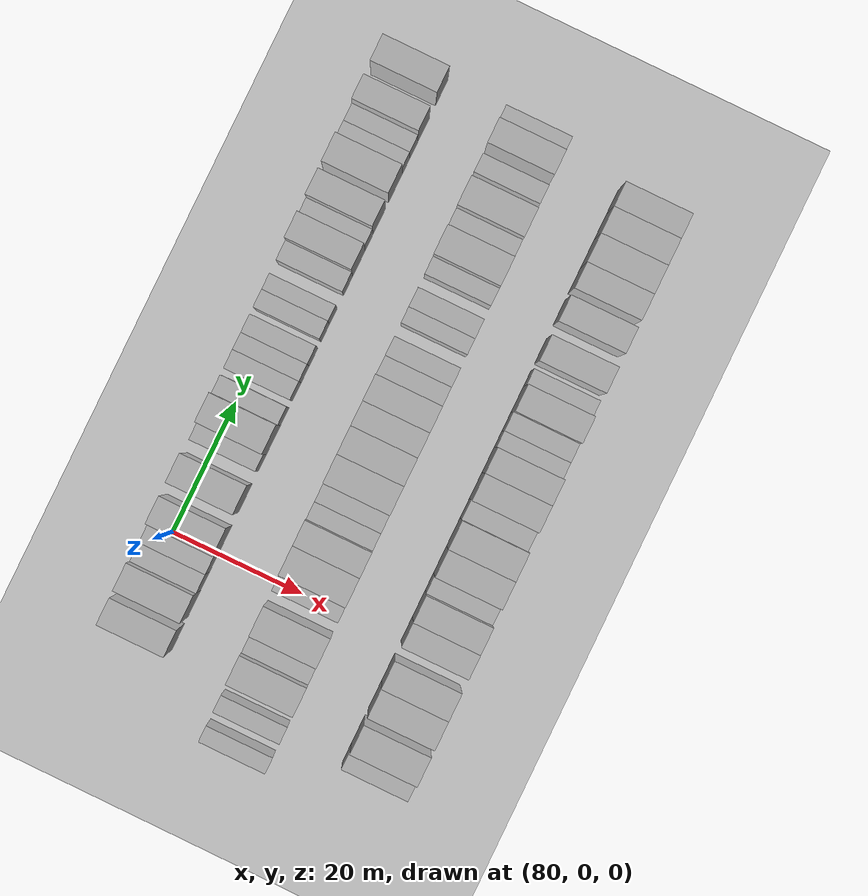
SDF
<sdf version="1.6">
 <world name="default">
  <include>
   <name>ground_plane_2</name>
   <uri>model://HANNAS_ground_plane</uri>
   <pose>100 0 0  0 0 0</pose>
  </include>
  <model name="building_609">
   <static>1</static>
   <pose>82.0000 -12.7474 0 0.000000 0.000000 0.000000</pose>
   <link name="link">
    <pose>0 0 4.50 0 0 0</pose>
    <collision name="collision"><geometry><box><size>10.0000 4.0182 9.0000</size></box></geometry></collision>
    <visual name="visual">
     <cast_shadows>0</cast_shadows>
     <geometry><box><size>10.0000 4.0182 9.0000</size></box></geometry>
     <material>
      <script>
       <uri>model://HANNAS_wall/materials/scripts</uri>
       <uri>model://HANNAS_wall/materials/textures</uri>
       <name>vrc/HANNAS_wall</name>
      </script>
     </material>
    </visual>
   </link>
  </model>
  <model name="building_610">
   <static>1</static>
   <pose>82.0000 -7.6578 0 0.000000 0.000000 0.000000</pose>
   <link name="link">
    <pose>0 0 4.50 0 0 0</pose>
    <collision name="collision"><geometry><box><size>10.0000 4.1610 9.0000</size></box></geometry></collision>
    <visual name="visual">
     <cast_shadows>0</cast_shadows>
     <geometry><box><size>10.0000 4.1610 9.0000</size></box></geometry>
     <material>
      <script>
       <uri>model://HANNAS_wall/materials/scripts</uri>
       <uri>model://HANNAS_wall/materials/textures</uri>
       <name>vrc/HANNAS_wall</name>
      </script>
     </material>
    </visual>
   </link>
  </model>
  <model name="building_611">
   <static>1</static>
   <pose>82.0000 -4.1638 0 0.000000 0.000000 0.000000</pose>
   <link name="link">
    <pose>0 0 3.00 0 0 0</pose>
    <collision name="collision"><geometry><box><size>10.0000 2.8270 6.0000</size></box></geometry></collision>
    <visual name="visual">
     <cast_shadows>0</cast_shadows>
     <geometry><box><size>10.0000 2.8270 6.0000</size></box></geometry>
     <material>
      <script>
       <uri>model://HANNAS_wall/materials/scripts</uri>
       <uri>model://HANNAS_wall/materials/textures</uri>
       <name>vrc/HANNAS_wall</name>
      </script>
     </material>
    </visual>
   </link>
  </model>
  <model name="building_612">
   <static>1</static>
   <pose>82.0000 -1.2792 0 0.000000 0.000000 0.000000</pose>
   <link name="link">
    <pose>0 0 3.00 0 0 0</pose>
    <collision name="collision"><geometry><box><size>10.0000 2.9424 6.0000</size></box></geometry></collision>
    <visual name="visual">
     <cast_shadows>0</cast_shadows>
     <geometry><box><size>10.0000 2.9424 6.0000</size></box></geometry>
     <material>
      <script>
       <uri>model://HANNAS_wall/materials/scripts</uri>
       <uri>model://HANNAS_wall/materials/textures</uri>
       <name>vrc/HANNAS_wall</name>
      </script>
     </material>
    </visual>
   </link>
  </model>
  <model name="building_613">
   <static>1</static>
   <pose>82.0000 2.2743 0 0.000000 0.000000 0.000000</pose>
   <link name="link">
    <pose>0 0 4.50 0 0 0</pose>
    <collision name="collision"><geometry><box><size>10.0000 4.1646 9.0000</size></box></geometry></collision>
    <visual name="visual">
     <cast_shadows>0</cast_shadows>
     <geometry><box><size>10.0000 4.1646 9.0000</size></box></geometry>
     <material>
      <script>
       <uri>model://HANNAS_wall/materials/scripts</uri>
       <uri>model://HANNAS_wall/materials/textures</uri>
       <name>vrc/HANNAS_wall</name>
      </script>
     </material>
    </visual>
   </link>
  </model>
  <model name="building_614">
   <static>1</static>
   <pose>82.0000 8.5472 0 0.000000 0.000000 0.000000</pose>
   <link name="link">
    <pose>0 0 4.50 0 0 0</pose>
    <collision name="collision"><geometry><box><size>10.0000 4.3812 9.0000</size></box></geometry></collision>
    <visual name="visual">
     <cast_shadows>0</cast_shadows>
     <geometry><box><size>10.0000 4.3812 9.0000</size></box></geometry>
     <material>
      <script>
       <uri>model://HANNAS_wall/materials/scripts</uri>
       <uri>model://HANNAS_wall/materials/textures</uri>
       <name>vrc/HANNAS_wall</name>
      </script>
     </material>
    </visual>
   </link>
  </model>
  <model name="building_615">
   <static>1</static>
   <pose>82.0000 14.0297 0 0.000000 0.000000 0.000000</pose>
   <link name="link">
    <pose>0 0 3.00 0 0 0</pose>
    <collision name="collision"><geometry><box><size>10.0000 2.5837 6.0000</size></box></geometry></collision>
    <visual name="visual">
     <cast_shadows>0</cast_shadows>
     <geometry><box><size>10.0000 2.5837 6.0000</size></box></geometry>
     <material>
      <script>
       <uri>model://HANNAS_wall/materials/scripts</uri>
       <uri>model://HANNAS_wall/materials/textures</uri>
       <name>vrc/HANNAS_wall</name>
      </script>
     </material>
    </visual>
   </link>
  </model>
  <model name="building_616">
   <static>1</static>
   <pose>82.0000 17.5222 0 0.000000 0.000000 0.000000</pose>
   <link name="link">
    <pose>0 0 4.50 0 0 0</pose>
    <collision name="collision"><geometry><box><size>10.0000 4.4014 9.0000</size></box></geometry></collision>
    <visual name="visual">
     <cast_shadows>0</cast_shadows>
     <geometry><box><size>10.0000 4.4014 9.0000</size></box></geometry>
     <material>
      <script>
       <uri>model://HANNAS_wall/materials/scripts</uri>
       <uri>model://HANNAS_wall/materials/textures</uri>
       <name>vrc/HANNAS_wall</name>
      </script>
     </material>
    </visual>
   </link>
  </model>
  <model name="building_617">
   <static>1</static>
   <pose>82.0000 21.1062 0 0.000000 0.000000 0.000000</pose>
   <link name="link">
    <pose>0 0 3.00 0 0 0</pose>
    <collision name="collision"><geometry><box><size>10.0000 2.7667 6.0000</size></box></geometry></collision>
    <visual name="visual">
     <cast_shadows>0</cast_shadows>
     <geometry><box><size>10.0000 2.7667 6.0000</size></box></geometry>
     <material>
      <script>
       <uri>model://HANNAS_wall/materials/scripts</uri>
       <uri>model://HANNAS_wall/materials/textures</uri>
       <name>vrc/HANNAS_wall</name>
      </script>
     </material>
    </visual>
   </link>
  </model>
  <model name="building_618">
   <static>1</static>
   <pose>82.0000 24.8997 0 0.000000 0.000000 0.000000</pose>
   <link name="link">
    <pose>0 0 3.00 0 0 0</pose>
    <collision name="collision"><geometry><box><size>10.0000 2.8203 6.0000</size></box></geometry></collision>
    <visual name="visual">
     <cast_shadows>0</cast_shadows>
     <geometry><box><size>10.0000 2.8203 6.0000</size></box></geometry>
     <material>
      <script>
       <uri>model://HANNAS_wall/materials/scripts</uri>
       <uri>model://HANNAS_wall/materials/textures</uri>
       <name>vrc/HANNAS_wall</name>
      </script>
     </material>
    </visual>
   </link>
  </model>
  <model name="building_619">
   <static>1</static>
   <pose>82.0000 27.5979 0 0.000000 0.000000 0.000000</pose>
   <link name="link">
    <pose>0 0 3.00 0 0 0</pose>
    <collision name="collision"><geometry><box><size>10.0000 2.5760 6.0000</size></box></geometry></collision>
    <visual name="visual">
     <cast_shadows>0</cast_shadows>
     <geometry><box><size>10.0000 2.5760 6.0000</size></box></geometry>
     <material>
      <script>
       <uri>model://HANNAS_wall/materials/scripts</uri>
       <uri>model://HANNAS_wall/materials/textures</uri>
       <name>vrc/HANNAS_wall</name>
      </script>
     </material>
    </visual>
   </link>
  </model>
  <model name="building_620">
   <static>1</static>
   <pose>82.0000 30.2731 0 0.000000 0.000000 0.000000</pose>
   <link name="link">
    <pose>0 0 3.00 0 0 0</pose>
    <collision name="collision"><geometry><box><size>10.0000 2.7744 6.0000</size></box></geometry></collision>
    <visual name="visual">
     <cast_shadows>0</cast_shadows>
     <geometry><box><size>10.0000 2.7744 6.0000</size></box></geometry>
     <material>
      <script>
       <uri>model://HANNAS_wall/materials/scripts</uri>
       <uri>model://HANNAS_wall/materials/textures</uri>
       <name>vrc/HANNAS_wall</name>
      </script>
     </material>
    </visual>
   </link>
  </model>
  <model name="building_621">
   <static>1</static>
   <pose>82.0000 34.0211 0 0.000000 0.000000 0.000000</pose>
   <link name="link">
    <pose>0 0 3.00 0 0 0</pose>
    <collision name="collision"><geometry><box><size>10.0000 2.7216 6.0000</size></box></geometry></collision>
    <visual name="visual">
     <cast_shadows>0</cast_shadows>
     <geometry><box><size>10.0000 2.7216 6.0000</size></box></geometry>
     <material>
      <script>
       <uri>model://HANNAS_wall/materials/scripts</uri>
       <uri>model://HANNAS_wall/materials/textures</uri>
       <name>vrc/HANNAS_wall</name>
      </script>
     </material>
    </visual>
   </link>
  </model>
  <model name="building_622">
   <static>1</static>
   <pose>82.0000 36.5833 0 0.000000 0.000000 0.000000</pose>
   <link name="link">
    <pose>0 0 3.00 0 0 0</pose>
    <collision name="collision"><geometry><box><size>10.0000 2.4027 6.0000</size></box></geometry></collision>
    <visual name="visual">
     <cast_shadows>0</cast_shadows>
     <geometry><box><size>10.0000 2.4027 6.0000</size></box></geometry>
     <material>
      <script>
       <uri>model://HANNAS_wall/materials/scripts</uri>
       <uri>model://HANNAS_wall/materials/textures</uri>
       <name>vrc/HANNAS_wall</name>
      </script>
     </material>
    </visual>
   </link>
  </model>
  <model name="building_623">
   <static>1</static>
   <pose>82.0000 41.2823 0 0.000000 0.000000 0.000000</pose>
   <link name="link">
    <pose>0 0 3.00 0 0 0</pose>
    <collision name="collision"><geometry><box><size>10.0000 2.9954 6.0000</size></box></geometry></collision>
    <visual name="visual">
     <cast_shadows>0</cast_shadows>
     <geometry><box><size>10.0000 2.9954 6.0000</size></box></geometry>
     <material>
      <script>
       <uri>model://HANNAS_wall/materials/scripts</uri>
       <uri>model://HANNAS_wall/materials/textures</uri>
       <name>vrc/HANNAS_wall</name>
      </script>
     </material>
    </visual>
   </link>
  </model>
  <model name="building_624">
   <static>1</static>
   <pose>82.0000 44.7622 0 0.000000 0.000000 0.000000</pose>
   <link name="link">
    <pose>0 0 4.50 0 0 0</pose>
    <collision name="collision"><geometry><box><size>10.0000 3.9644 9.0000</size></box></geometry></collision>
    <visual name="visual">
     <cast_shadows>0</cast_shadows>
     <geometry><box><size>10.0000 3.9644 9.0000</size></box></geometry>
     <material>
      <script>
       <uri>model://HANNAS_wall/materials/scripts</uri>
       <uri>model://HANNAS_wall/materials/textures</uri>
       <name>vrc/HANNAS_wall</name>
      </script>
     </material>
    </visual>
   </link>
  </model>
  <model name="building_625">
   <static>1</static>
   <pose>82.0000 47.9828 0 0.000000 0.000000 0.000000</pose>
   <link name="link">
    <pose>0 0 3.00 0 0 0</pose>
    <collision name="collision"><geometry><box><size>10.0000 2.4769 6.0000</size></box></geometry></collision>
    <visual name="visual">
     <cast_shadows>0</cast_shadows>
     <geometry><box><size>10.0000 2.4769 6.0000</size></box></geometry>
     <material>
      <script>
       <uri>model://HANNAS_wall/materials/scripts</uri>
       <uri>model://HANNAS_wall/materials/textures</uri>
       <name>vrc/HANNAS_wall</name>
      </script>
     </material>
    </visual>
   </link>
  </model>
  <model name="building_626">
   <static>1</static>
   <pose>82.0000 51.1913 0 0.000000 0.000000 0.000000</pose>
   <link name="link">
    <pose>0 0 4.50 0 0 0</pose>
    <collision name="collision"><geometry><box><size>10.0000 3.9401 9.0000</size></box></geometry></collision>
    <visual name="visual">
     <cast_shadows>0</cast_shadows>
     <geometry><box><size>10.0000 3.9401 9.0000</size></box></geometry>
     <material>
      <script>
       <uri>model://HANNAS_wall/materials/scripts</uri>
       <uri>model://HANNAS_wall/materials/textures</uri>
       <name>vrc/HANNAS_wall</name>
      </script>
     </material>
    </visual>
   </link>
  </model>
  <model name="building_627">
   <static>1</static>
   <pose>82.0000 56.3258 0 0.000000 0.000000 0.000000</pose>
   <link name="link">
    <pose>0 0 4.50 0 0 0</pose>
    <collision name="collision"><geometry><box><size>10.0000 4.3289 9.0000</size></box></geometry></collision>
    <visual name="visual">
     <cast_shadows>0</cast_shadows>
     <geometry><box><size>10.0000 4.3289 9.0000</size></box></geometry>
     <material>
      <script>
       <uri>model://HANNAS_wall/materials/scripts</uri>
       <uri>model://HANNAS_wall/materials/textures</uri>
       <name>vrc/HANNAS_wall</name>
      </script>
     </material>
    </visual>
   </link>
  </model>
  <model name="building_628">
   <static>1</static>
   <pose>82.0000 59.6903 0 0.000000 0.000000 0.000000</pose>
   <link name="link">
    <pose>0 0 3.00 0 0 0</pose>
    <collision name="collision"><geometry><box><size>10.0000 2.4000 6.0000</size></box></geometry></collision>
    <visual name="visual">
     <cast_shadows>0</cast_shadows>
     <geometry><box><size>10.0000 2.4000 6.0000</size></box></geometry>
     <material>
      <script>
       <uri>model://HANNAS_wall/materials/scripts</uri>
       <uri>model://HANNAS_wall/materials/textures</uri>
       <name>vrc/HANNAS_wall</name>
      </script>
     </material>
    </visual>
   </link>
  </model>
  <model name="building_629">
   <static>1</static>
   <pose>82.0000 62.1842 0 0.000000 0.000000 0.000000</pose>
   <link name="link">
    <pose>0 0 3.00 0 0 0</pose>
    <collision name="collision"><geometry><box><size>10.0000 2.5877 6.0000</size></box></geometry></collision>
    <visual name="visual">
     <cast_shadows>0</cast_shadows>
     <geometry><box><size>10.0000 2.5877 6.0000</size></box></geometry>
     <material>
      <script>
       <uri>model://HANNAS_wall/materials/scripts</uri>
       <uri>model://HANNAS_wall/materials/textures</uri>
       <name>vrc/HANNAS_wall</name>
      </script>
     </material>
    </visual>
   </link>
  </model>
  <model name="building_630">
   <static>1</static>
   <pose>82.0000 65.3416 0 0.000000 0.000000 0.000000</pose>
   <link name="link">
    <pose>0 0 4.50 0 0 0</pose>
    <collision name="collision"><geometry><box><size>10.0000 3.7273 9.0000</size></box></geometry></collision>
    <visual name="visual">
     <cast_shadows>0</cast_shadows>
     <geometry><box><size>10.0000 3.7273 9.0000</size></box></geometry>
     <material>
      <script>
       <uri>model://HANNAS_wall/materials/scripts</uri>
       <uri>model://HANNAS_wall/materials/textures</uri>
       <name>vrc/HANNAS_wall</name>
      </script>
     </material>
    </visual>
   </link>
  </model>
  <model name="building_631">
   <static>1</static>
   <pose>82.0000 71.1906 0 0.000000 0.000000 0.000000</pose>
   <link name="link">
    <pose>0 0 4.50 0 0 0</pose>
    <collision name="collision"><geometry><box><size>10.0000 3.9707 9.0000</size></box></geometry></collision>
    <visual name="visual">
     <cast_shadows>0</cast_shadows>
     <geometry><box><size>10.0000 3.9707 9.0000</size></box></geometry>
     <material>
      <script>
       <uri>model://HANNAS_wall/materials/scripts</uri>
       <uri>model://HANNAS_wall/materials/textures</uri>
       <name>vrc/HANNAS_wall</name>
      </script>
     </material>
    </visual>
   </link>
  </model>
  <model name="building_786">
   <static>1</static>
   <pose>101.0000 -22.1874 0 0.000000 0.000000 0.000000</pose>
   <link name="link">
    <pose>0 0 3.00 0 0 0</pose>
    <collision name="collision"><geometry><box><size>10.0000 2.4116 6.0000</size></box></geometry></collision>
    <visual name="visual">
     <cast_shadows>0</cast_shadows>
     <geometry><box><size>10.0000 2.4116 6.0000</size></box></geometry>
     <material>
      <script>
       <uri>model://HANNAS_wall/materials/scripts</uri>
       <uri>model://HANNAS_wall/materials/textures</uri>
       <name>vrc/HANNAS_wall</name>
      </script>
     </material>
    </visual>
   </link>
  </model>
  <model name="building_787">
   <static>1</static>
   <pose>101.0000 -17.7012 0 0.000000 0.000000 0.000000</pose>
   <link name="link">
    <pose>0 0 3.00 0 0 0</pose>
    <collision name="collision"><geometry><box><size>10.0000 2.5607 6.0000</size></box></geometry></collision>
    <visual name="visual">
     <cast_shadows>0</cast_shadows>
     <geometry><box><size>10.0000 2.5607 6.0000</size></box></geometry>
     <material>
      <script>
       <uri>model://HANNAS_wall/materials/scripts</uri>
       <uri>model://HANNAS_wall/materials/textures</uri>
       <name>vrc/HANNAS_wall</name>
      </script>
     </material>
    </visual>
   </link>
  </model>
  <model name="building_788">
   <static>1</static>
   <pose>101.0000 -12.2558 0 0.000000 0.000000 0.000000</pose>
   <link name="link">
    <pose>0 0 4.50 0 0 0</pose>
    <collision name="collision"><geometry><box><size>10.0000 4.3301 9.0000</size></box></geometry></collision>
    <visual name="visual">
     <cast_shadows>0</cast_shadows>
     <geometry><box><size>10.0000 4.3301 9.0000</size></box></geometry>
     <material>
      <script>
       <uri>model://HANNAS_wall/materials/scripts</uri>
       <uri>model://HANNAS_wall/materials/textures</uri>
       <name>vrc/HANNAS_wall</name>
      </script>
     </material>
    </visual>
   </link>
  </model>
  <model name="building_789">
   <static>1</static>
   <pose>101.0000 -8.6845 0 0.000000 0.000000 0.000000</pose>
   <link name="link">
    <pose>0 0 3.00 0 0 0</pose>
    <collision name="collision"><geometry><box><size>10.0000 2.8124 6.0000</size></box></geometry></collision>
    <visual name="visual">
     <cast_shadows>0</cast_shadows>
     <geometry><box><size>10.0000 2.8124 6.0000</size></box></geometry>
     <material>
      <script>
       <uri>model://HANNAS_wall/materials/scripts</uri>
       <uri>model://HANNAS_wall/materials/textures</uri>
       <name>vrc/HANNAS_wall</name>
      </script>
     </material>
    </visual>
   </link>
  </model>
  <model name="building_790">
   <static>1</static>
   <pose>101.0000 -5.0381 0 0.000000 0.000000 0.000000</pose>
   <link name="link">
    <pose>0 0 4.50 0 0 0</pose>
    <collision name="collision"><geometry><box><size>10.0000 4.4805 9.0000</size></box></geometry></collision>
    <visual name="visual">
     <cast_shadows>0</cast_shadows>
     <geometry><box><size>10.0000 4.4805 9.0000</size></box></geometry>
     <material>
      <script>
       <uri>model://HANNAS_wall/materials/scripts</uri>
       <uri>model://HANNAS_wall/materials/textures</uri>
       <name>vrc/HANNAS_wall</name>
      </script>
     </material>
    </visual>
   </link>
  </model>
  <model name="building_791">
   <static>1</static>
   <pose>101.0000 0.4718 0 0.000000 0.000000 0.000000</pose>
   <link name="link">
    <pose>0 0 3.00 0 0 0</pose>
    <collision name="collision"><geometry><box><size>10.0000 2.5393 6.0000</size></box></geometry></collision>
    <visual name="visual">
     <cast_shadows>0</cast_shadows>
     <geometry><box><size>10.0000 2.5393 6.0000</size></box></geometry>
     <material>
      <script>
       <uri>model://HANNAS_wall/materials/scripts</uri>
       <uri>model://HANNAS_wall/materials/textures</uri>
       <name>vrc/HANNAS_wall</name>
      </script>
     </material>
    </visual>
   </link>
  </model>
  <model name="building_792">
   <static>1</static>
   <pose>101.0000 3.9350 0 0.000000 0.000000 0.000000</pose>
   <link name="link">
    <pose>0 0 4.50 0 0 0</pose>
    <collision name="collision"><geometry><box><size>10.0000 4.3871 9.0000</size></box></geometry></collision>
    <visual name="visual">
     <cast_shadows>0</cast_shadows>
     <geometry><box><size>10.0000 4.3871 9.0000</size></box></geometry>
     <material>
      <script>
       <uri>model://HANNAS_wall/materials/scripts</uri>
       <uri>model://HANNAS_wall/materials/textures</uri>
       <name>vrc/HANNAS_wall</name>
      </script>
     </material>
    </visual>
   </link>
  </model>
  <model name="building_793">
   <static>1</static>
   <pose>101.0000 8.0394 0 0.000000 0.000000 0.000000</pose>
   <link name="link">
    <pose>0 0 4.50 0 0 0</pose>
    <collision name="collision"><geometry><box><size>10.0000 3.8217 9.0000</size></box></geometry></collision>
    <visual name="visual">
     <cast_shadows>0</cast_shadows>
     <geometry><box><size>10.0000 3.8217 9.0000</size></box></geometry>
     <material>
      <script>
       <uri>model://HANNAS_wall/materials/scripts</uri>
       <uri>model://HANNAS_wall/materials/textures</uri>
       <name>vrc/HANNAS_wall</name>
      </script>
     </material>
    </visual>
   </link>
  </model>
  <model name="building_794">
   <static>1</static>
   <pose>101.0000 11.2678 0 0.000000 0.000000 0.000000</pose>
   <link name="link">
    <pose>0 0 3.00 0 0 0</pose>
    <collision name="collision"><geometry><box><size>10.0000 2.6349 6.0000</size></box></geometry></collision>
    <visual name="visual">
     <cast_shadows>0</cast_shadows>
     <geometry><box><size>10.0000 2.6349 6.0000</size></box></geometry>
     <material>
      <script>
       <uri>model://HANNAS_wall/materials/scripts</uri>
       <uri>model://HANNAS_wall/materials/textures</uri>
       <name>vrc/HANNAS_wall</name>
      </script>
     </material>
    </visual>
   </link>
  </model>
  <model name="building_795">
   <static>1</static>
   <pose>101.0000 13.9943 0 0.000000 0.000000 0.000000</pose>
   <link name="link">
    <pose>0 0 3.00 0 0 0</pose>
    <collision name="collision"><geometry><box><size>10.0000 2.8181 6.0000</size></box></geometry></collision>
    <visual name="visual">
     <cast_shadows>0</cast_shadows>
     <geometry><box><size>10.0000 2.8181 6.0000</size></box></geometry>
     <material>
      <script>
       <uri>model://HANNAS_wall/materials/scripts</uri>
       <uri>model://HANNAS_wall/materials/textures</uri>
       <name>vrc/HANNAS_wall</name>
      </script>
     </material>
    </visual>
   </link>
  </model>
  <model name="building_796">
   <static>1</static>
   <pose>101.0000 17.5670 0 0.000000 0.000000 0.000000</pose>
   <link name="link">
    <pose>0 0 4.50 0 0 0</pose>
    <collision name="collision"><geometry><box><size>10.0000 4.3274 9.0000</size></box></geometry></collision>
    <visual name="visual">
     <cast_shadows>0</cast_shadows>
     <geometry><box><size>10.0000 4.3274 9.0000</size></box></geometry>
     <material>
      <script>
       <uri>model://HANNAS_wall/materials/scripts</uri>
       <uri>model://HANNAS_wall/materials/textures</uri>
       <name>vrc/HANNAS_wall</name>
      </script>
     </material>
    </visual>
   </link>
  </model>
  <model name="building_797">
   <static>1</static>
   <pose>101.0000 21.8519 0 0.000000 0.000000 0.000000</pose>
   <link name="link">
    <pose>0 0 4.50 0 0 0</pose>
    <collision name="collision"><geometry><box><size>10.0000 4.2425 9.0000</size></box></geometry></collision>
    <visual name="visual">
     <cast_shadows>0</cast_shadows>
     <geometry><box><size>10.0000 4.2425 9.0000</size></box></geometry>
     <material>
      <script>
       <uri>model://HANNAS_wall/materials/scripts</uri>
       <uri>model://HANNAS_wall/materials/textures</uri>
       <name>vrc/HANNAS_wall</name>
      </script>
     </material>
    </visual>
   </link>
  </model>
  <model name="building_798">
   <static>1</static>
   <pose>101.0000 25.8313 0 0.000000 0.000000 0.000000</pose>
   <link name="link">
    <pose>0 0 4.50 0 0 0</pose>
    <collision name="collision"><geometry><box><size>10.0000 3.7162 9.0000</size></box></geometry></collision>
    <visual name="visual">
     <cast_shadows>0</cast_shadows>
     <geometry><box><size>10.0000 3.7162 9.0000</size></box></geometry>
     <material>
      <script>
       <uri>model://HANNAS_wall/materials/scripts</uri>
       <uri>model://HANNAS_wall/materials/textures</uri>
       <name>vrc/HANNAS_wall</name>
      </script>
     </material>
    </visual>
   </link>
  </model>
  <model name="building_799">
   <static>1</static>
   <pose>101.0000 29.6726 0 0.000000 0.000000 0.000000</pose>
   <link name="link">
    <pose>0 0 4.50 0 0 0</pose>
    <collision name="collision"><geometry><box><size>10.0000 3.9665 9.0000</size></box></geometry></collision>
    <visual name="visual">
     <cast_shadows>0</cast_shadows>
     <geometry><box><size>10.0000 3.9665 9.0000</size></box></geometry>
     <material>
      <script>
       <uri>model://HANNAS_wall/materials/scripts</uri>
       <uri>model://HANNAS_wall/materials/textures</uri>
       <name>vrc/HANNAS_wall</name>
      </script>
     </material>
    </visual>
   </link>
  </model>
  <model name="building_800">
   <static>1</static>
   <pose>101.0000 33.1218 0 0.000000 0.000000 0.000000</pose>
   <link name="link">
    <pose>0 0 3.00 0 0 0</pose>
    <collision name="collision"><geometry><box><size>10.0000 2.9320 6.0000</size></box></geometry></collision>
    <visual name="visual">
     <cast_shadows>0</cast_shadows>
     <geometry><box><size>10.0000 2.9320 6.0000</size></box></geometry>
     <material>
      <script>
       <uri>model://HANNAS_wall/materials/scripts</uri>
       <uri>model://HANNAS_wall/materials/textures</uri>
       <name>vrc/HANNAS_wall</name>
      </script>
     </material>
    </visual>
   </link>
  </model>
  <model name="building_801">
   <static>1</static>
   <pose>101.0000 36.0341 0 0.000000 0.000000 0.000000</pose>
   <link name="link">
    <pose>0 0 3.00 0 0 0</pose>
    <collision name="collision"><geometry><box><size>10.0000 2.8925 6.0000</size></box></geometry></collision>
    <visual name="visual">
     <cast_shadows>0</cast_shadows>
     <geometry><box><size>10.0000 2.8925 6.0000</size></box></geometry>
     <material>
      <script>
       <uri>model://HANNAS_wall/materials/scripts</uri>
       <uri>model://HANNAS_wall/materials/textures</uri>
       <name>vrc/HANNAS_wall</name>
      </script>
     </material>
    </visual>
   </link>
  </model>
  <model name="building_802">
   <static>1</static>
   <pose>101.0000 40.6996 0 0.000000 0.000000 0.000000</pose>
   <link name="link">
    <pose>0 0 3.00 0 0 0</pose>
    <collision name="collision"><geometry><box><size>10.0000 2.4385 6.0000</size></box></geometry></collision>
    <visual name="visual">
     <cast_shadows>0</cast_shadows>
     <geometry><box><size>10.0000 2.4385 6.0000</size></box></geometry>
     <material>
      <script>
       <uri>model://HANNAS_wall/materials/scripts</uri>
       <uri>model://HANNAS_wall/materials/textures</uri>
       <name>vrc/HANNAS_wall</name>
      </script>
     </material>
    </visual>
   </link>
  </model>
  <model name="building_803">
   <static>1</static>
   <pose>101.0000 43.3901 0 0.000000 0.000000 0.000000</pose>
   <link name="link">
    <pose>0 0 3.00 0 0 0</pose>
    <collision name="collision"><geometry><box><size>10.0000 2.9424 6.0000</size></box></geometry></collision>
    <visual name="visual">
     <cast_shadows>0</cast_shadows>
     <geometry><box><size>10.0000 2.9424 6.0000</size></box></geometry>
     <material>
      <script>
       <uri>model://HANNAS_wall/materials/scripts</uri>
       <uri>model://HANNAS_wall/materials/textures</uri>
       <name>vrc/HANNAS_wall</name>
      </script>
     </material>
    </visual>
   </link>
  </model>
  <model name="building_804">
   <static>1</static>
   <pose>101.0000 48.1901 0 0.000000 0.000000 0.000000</pose>
   <link name="link">
    <pose>0 0 3.00 0 0 0</pose>
    <collision name="collision"><geometry><box><size>10.0000 2.6577 6.0000</size></box></geometry></collision>
    <visual name="visual">
     <cast_shadows>0</cast_shadows>
     <geometry><box><size>10.0000 2.6577 6.0000</size></box></geometry>
     <material>
      <script>
       <uri>model://HANNAS_wall/materials/scripts</uri>
       <uri>model://HANNAS_wall/materials/textures</uri>
       <name>vrc/HANNAS_wall</name>
      </script>
     </material>
    </visual>
   </link>
  </model>
  <model name="building_805">
   <static>1</static>
   <pose>101.0000 51.7249 0 0.000000 0.000000 0.000000</pose>
   <link name="link">
    <pose>0 0 4.50 0 0 0</pose>
    <collision name="collision"><geometry><box><size>10.0000 4.4118 9.0000</size></box></geometry></collision>
    <visual name="visual">
     <cast_shadows>0</cast_shadows>
     <geometry><box><size>10.0000 4.4118 9.0000</size></box></geometry>
     <material>
      <script>
       <uri>model://HANNAS_wall/materials/scripts</uri>
       <uri>model://HANNAS_wall/materials/textures</uri>
       <name>vrc/HANNAS_wall</name>
      </script>
     </material>
    </visual>
   </link>
  </model>
  <model name="building_806">
   <static>1</static>
   <pose>101.0000 55.3804 0 0.000000 0.000000 0.000000</pose>
   <link name="link">
    <pose>0 0 3.00 0 0 0</pose>
    <collision name="collision"><geometry><box><size>10.0000 2.8993 6.0000</size></box></geometry></collision>
    <visual name="visual">
     <cast_shadows>0</cast_shadows>
     <geometry><box><size>10.0000 2.8993 6.0000</size></box></geometry>
     <material>
      <script>
       <uri>model://HANNAS_wall/materials/scripts</uri>
       <uri>model://HANNAS_wall/materials/textures</uri>
       <name>vrc/HANNAS_wall</name>
      </script>
     </material>
    </visual>
   </link>
  </model>
  <model name="building_807">
   <static>1</static>
   <pose>101.0000 59.0362 0 0.000000 0.000000 0.000000</pose>
   <link name="link">
    <pose>0 0 4.50 0 0 0</pose>
    <collision name="collision"><geometry><box><size>10.0000 4.4124 9.0000</size></box></geometry></collision>
    <visual name="visual">
     <cast_shadows>0</cast_shadows>
     <geometry><box><size>10.0000 4.4124 9.0000</size></box></geometry>
     <material>
      <script>
       <uri>model://HANNAS_wall/materials/scripts</uri>
       <uri>model://HANNAS_wall/materials/textures</uri>
       <name>vrc/HANNAS_wall</name>
      </script>
     </material>
    </visual>
   </link>
  </model>
  <model name="building_808">
   <static>1</static>
   <pose>101.0000 63.6746 0 0.000000 0.000000 0.000000</pose>
   <link name="link">
    <pose>0 0 3.00 0 0 0</pose>
    <collision name="collision"><geometry><box><size>10.0000 2.8644 6.0000</size></box></geometry></collision>
    <visual name="visual">
     <cast_shadows>0</cast_shadows>
     <geometry><box><size>10.0000 2.8644 6.0000</size></box></geometry>
     <material>
      <script>
       <uri>model://HANNAS_wall/materials/scripts</uri>
       <uri>model://HANNAS_wall/materials/textures</uri>
       <name>vrc/HANNAS_wall</name>
      </script>
     </material>
    </visual>
   </link>
  </model>
  <model name="building_809">
   <static>1</static>
   <pose>101.0000 67.9982 0 0.000000 0.000000 0.000000</pose>
   <link name="link">
    <pose>0 0 4.50 0 0 0</pose>
    <collision name="collision"><geometry><box><size>10.0000 3.7828 9.0000</size></box></geometry></collision>
    <visual name="visual">
     <cast_shadows>0</cast_shadows>
     <geometry><box><size>10.0000 3.7828 9.0000</size></box></geometry>
     <material>
      <script>
       <uri>model://HANNAS_wall/materials/scripts</uri>
       <uri>model://HANNAS_wall/materials/textures</uri>
       <name>vrc/HANNAS_wall</name>
      </script>
     </material>
    </visual>
   </link>
  </model>
  <model name="building_810">
   <static>1</static>
   <pose>101.0000 71.1543 0 0.000000 0.000000 0.000000</pose>
   <link name="link">
    <pose>0 0 3.00 0 0 0</pose>
    <collision name="collision"><geometry><box><size>10.0000 2.5293 6.0000</size></box></geometry></collision>
    <visual name="visual">
     <cast_shadows>0</cast_shadows>
     <geometry><box><size>10.0000 2.5293 6.0000</size></box></geometry>
     <material>
      <script>
       <uri>model://HANNAS_wall/materials/scripts</uri>
       <uri>model://HANNAS_wall/materials/textures</uri>
       <name>vrc/HANNAS_wall</name>
      </script>
     </material>
    </visual>
   </link>
  </model>
  <model name="building_961">
   <static>1</static>
   <pose>120.0000 -16.9588 0 0.000000 0.000000 0.000000</pose>
   <link name="link">
    <pose>0 0 3.00 0 0 0</pose>
    <collision name="collision"><geometry><box><size>10.0000 2.8099 6.0000</size></box></geometry></collision>
    <visual name="visual">
     <cast_shadows>0</cast_shadows>
     <geometry><box><size>10.0000 2.8099 6.0000</size></box></geometry>
     <material>
      <script>
       <uri>model://HANNAS_wall/materials/scripts</uri>
       <uri>model://HANNAS_wall/materials/textures</uri>
       <name>vrc/HANNAS_wall</name>
      </script>
     </material>
    </visual>
   </link>
  </model>
  <model name="building_962">
   <static>1</static>
   <pose>120.0000 -13.3728 0 0.000000 0.000000 0.000000</pose>
   <link name="link">
    <pose>0 0 4.50 0 0 0</pose>
    <collision name="collision"><geometry><box><size>10.0000 4.3620 9.0000</size></box></geometry></collision>
    <visual name="visual">
     <cast_shadows>0</cast_shadows>
     <geometry><box><size>10.0000 4.3620 9.0000</size></box></geometry>
     <material>
      <script>
       <uri>model://HANNAS_wall/materials/scripts</uri>
       <uri>model://HANNAS_wall/materials/textures</uri>
       <name>vrc/HANNAS_wall</name>
      </script>
     </material>
    </visual>
   </link>
  </model>
  <model name="building_963">
   <static>1</static>
   <pose>120.0000 -8.0521 0 0.000000 0.000000 0.000000</pose>
   <link name="link">
    <pose>0 0 4.50 0 0 0</pose>
    <collision name="collision"><geometry><box><size>10.0000 4.2794 9.0000</size></box></geometry></collision>
    <visual name="visual">
     <cast_shadows>0</cast_shadows>
     <geometry><box><size>10.0000 4.2794 9.0000</size></box></geometry>
     <material>
      <script>
       <uri>model://HANNAS_wall/materials/scripts</uri>
       <uri>model://HANNAS_wall/materials/textures</uri>
       <name>vrc/HANNAS_wall</name>
      </script>
     </material>
    </visual>
   </link>
  </model>
  <model name="building_964">
   <static>1</static>
   <pose>120.0000 -3.8244 0 0.000000 0.000000 0.000000</pose>
   <link name="link">
    <pose>0 0 4.50 0 0 0</pose>
    <collision name="collision"><geometry><box><size>10.0000 4.1761 9.0000</size></box></geometry></collision>
    <visual name="visual">
     <cast_shadows>0</cast_shadows>
     <geometry><box><size>10.0000 4.1761 9.0000</size></box></geometry>
     <material>
      <script>
       <uri>model://HANNAS_wall/materials/scripts</uri>
       <uri>model://HANNAS_wall/materials/textures</uri>
       <name>vrc/HANNAS_wall</name>
      </script>
     </material>
    </visual>
   </link>
  </model>
  <model name="building_965">
   <static>1</static>
   <pose>120.0000 2.0857 0 0.000000 0.000000 0.000000</pose>
   <link name="link">
    <pose>0 0 4.50 0 0 0</pose>
    <collision name="collision"><geometry><box><size>10.0000 3.6442 9.0000</size></box></geometry></collision>
    <visual name="visual">
     <cast_shadows>0</cast_shadows>
     <geometry><box><size>10.0000 3.6442 9.0000</size></box></geometry>
     <material>
      <script>
       <uri>model://HANNAS_wall/materials/scripts</uri>
       <uri>model://HANNAS_wall/materials/textures</uri>
       <name>vrc/HANNAS_wall</name>
      </script>
     </material>
    </visual>
   </link>
  </model>
  <model name="building_966">
   <static>1</static>
   <pose>120.0000 5.9381 0 0.000000 0.000000 0.000000</pose>
   <link name="link">
    <pose>0 0 4.50 0 0 0</pose>
    <collision name="collision"><geometry><box><size>10.0000 4.0606 9.0000</size></box></geometry></collision>
    <visual name="visual">
     <cast_shadows>0</cast_shadows>
     <geometry><box><size>10.0000 4.0606 9.0000</size></box></geometry>
     <material>
      <script>
       <uri>model://HANNAS_wall/materials/scripts</uri>
       <uri>model://HANNAS_wall/materials/textures</uri>
       <name>vrc/HANNAS_wall</name>
      </script>
     </material>
    </visual>
   </link>
  </model>
  <model name="building_967">
   <static>1</static>
   <pose>120.0000 9.2942 0 0.000000 0.000000 0.000000</pose>
   <link name="link">
    <pose>0 0 3.00 0 0 0</pose>
    <collision name="collision"><geometry><box><size>10.0000 2.6517 6.0000</size></box></geometry></collision>
    <visual name="visual">
     <cast_shadows>0</cast_shadows>
     <geometry><box><size>10.0000 2.6517 6.0000</size></box></geometry>
     <material>
      <script>
       <uri>model://HANNAS_wall/materials/scripts</uri>
       <uri>model://HANNAS_wall/materials/textures</uri>
       <name>vrc/HANNAS_wall</name>
      </script>
     </material>
    </visual>
   </link>
  </model>
  <model name="building_968">
   <static>1</static>
   <pose>120.0000 12.6835 0 0.000000 0.000000 0.000000</pose>
   <link name="link">
    <pose>0 0 4.50 0 0 0</pose>
    <collision name="collision"><geometry><box><size>10.0000 4.1270 9.0000</size></box></geometry></collision>
    <visual name="visual">
     <cast_shadows>0</cast_shadows>
     <geometry><box><size>10.0000 4.1270 9.0000</size></box></geometry>
     <material>
      <script>
       <uri>model://HANNAS_wall/materials/scripts</uri>
       <uri>model://HANNAS_wall/materials/textures</uri>
       <name>vrc/HANNAS_wall</name>
      </script>
     </material>
    </visual>
   </link>
  </model>
  <model name="building_969">
   <static>1</static>
   <pose>120.0000 16.8988 0 0.000000 0.000000 0.000000</pose>
   <link name="link">
    <pose>0 0 4.50 0 0 0</pose>
    <collision name="collision"><geometry><box><size>10.0000 4.3035 9.0000</size></box></geometry></collision>
    <visual name="visual">
     <cast_shadows>0</cast_shadows>
     <geometry><box><size>10.0000 4.3035 9.0000</size></box></geometry>
     <material>
      <script>
       <uri>model://HANNAS_wall/materials/scripts</uri>
       <uri>model://HANNAS_wall/materials/textures</uri>
       <name>vrc/HANNAS_wall</name>
      </script>
     </material>
    </visual>
   </link>
  </model>
  <model name="building_970">
   <static>1</static>
   <pose>120.0000 20.5275 0 0.000000 0.000000 0.000000</pose>
   <link name="link">
    <pose>0 0 3.00 0 0 0</pose>
    <collision name="collision"><geometry><box><size>10.0000 2.9539 6.0000</size></box></geometry></collision>
    <visual name="visual">
     <cast_shadows>0</cast_shadows>
     <geometry><box><size>10.0000 2.9539 6.0000</size></box></geometry>
     <material>
      <script>
       <uri>model://HANNAS_wall/materials/scripts</uri>
       <uri>model://HANNAS_wall/materials/textures</uri>
       <name>vrc/HANNAS_wall</name>
      </script>
     </material>
    </visual>
   </link>
  </model>
  <model name="building_971">
   <static>1</static>
   <pose>120.0000 24.0251 0 0.000000 0.000000 0.000000</pose>
   <link name="link">
    <pose>0 0 4.50 0 0 0</pose>
    <collision name="collision"><geometry><box><size>10.0000 4.0413 9.0000</size></box></geometry></collision>
    <visual name="visual">
     <cast_shadows>0</cast_shadows>
     <geometry><box><size>10.0000 4.0413 9.0000</size></box></geometry>
     <material>
      <script>
       <uri>model://HANNAS_wall/materials/scripts</uri>
       <uri>model://HANNAS_wall/materials/textures</uri>
       <name>vrc/HANNAS_wall</name>
      </script>
     </material>
    </visual>
   </link>
  </model>
  <model name="building_972">
   <static>1</static>
   <pose>120.0000 27.9809 0 0.000000 0.000000 0.000000</pose>
   <link name="link">
    <pose>0 0 4.50 0 0 0</pose>
    <collision name="collision"><geometry><box><size>10.0000 3.8703 9.0000</size></box></geometry></collision>
    <visual name="visual">
     <cast_shadows>0</cast_shadows>
     <geometry><box><size>10.0000 3.8703 9.0000</size></box></geometry>
     <material>
      <script>
       <uri>model://HANNAS_wall/materials/scripts</uri>
       <uri>model://HANNAS_wall/materials/textures</uri>
       <name>vrc/HANNAS_wall</name>
      </script>
     </material>
    </visual>
   </link>
  </model>
  <model name="building_973">
   <static>1</static>
   <pose>120.0000 31.1596 0 0.000000 0.000000 0.000000</pose>
   <link name="link">
    <pose>0 0 3.00 0 0 0</pose>
    <collision name="collision"><geometry><box><size>10.0000 2.4871 6.0000</size></box></geometry></collision>
    <visual name="visual">
     <cast_shadows>0</cast_shadows>
     <geometry><box><size>10.0000 2.4871 6.0000</size></box></geometry>
     <material>
      <script>
       <uri>model://HANNAS_wall/materials/scripts</uri>
       <uri>model://HANNAS_wall/materials/textures</uri>
       <name>vrc/HANNAS_wall</name>
      </script>
     </material>
    </visual>
   </link>
  </model>
  <model name="building_974">
   <static>1</static>
   <pose>120.0000 33.8403 0 0.000000 0.000000 0.000000</pose>
   <link name="link">
    <pose>0 0 3.00 0 0 0</pose>
    <collision name="collision"><geometry><box><size>10.0000 2.8743 6.0000</size></box></geometry></collision>
    <visual name="visual">
     <cast_shadows>0</cast_shadows>
     <geometry><box><size>10.0000 2.8743 6.0000</size></box></geometry>
     <material>
      <script>
       <uri>model://HANNAS_wall/materials/scripts</uri>
       <uri>model://HANNAS_wall/materials/textures</uri>
       <name>vrc/HANNAS_wall</name>
      </script>
     </material>
    </visual>
   </link>
  </model>
  <model name="building_975">
   <static>1</static>
   <pose>120.0000 37.2971 0 0.000000 0.000000 0.000000</pose>
   <link name="link">
    <pose>0 0 4.50 0 0 0</pose>
    <collision name="collision"><geometry><box><size>10.0000 4.0394 9.0000</size></box></geometry></collision>
    <visual name="visual">
     <cast_shadows>0</cast_shadows>
     <geometry><box><size>10.0000 4.0394 9.0000</size></box></geometry>
     <material>
      <script>
       <uri>model://HANNAS_wall/materials/scripts</uri>
       <uri>model://HANNAS_wall/materials/textures</uri>
       <name>vrc/HANNAS_wall</name>
      </script>
     </material>
    </visual>
   </link>
  </model>
  <model name="building_976">
   <static>1</static>
   <pose>120.0000 40.5324 0 0.000000 0.000000 0.000000</pose>
   <link name="link">
    <pose>0 0 3.00 0 0 0</pose>
    <collision name="collision"><geometry><box><size>10.0000 2.4312 6.0000</size></box></geometry></collision>
    <visual name="visual">
     <cast_shadows>0</cast_shadows>
     <geometry><box><size>10.0000 2.4312 6.0000</size></box></geometry>
     <material>
      <script>
       <uri>model://HANNAS_wall/materials/scripts</uri>
       <uri>model://HANNAS_wall/materials/textures</uri>
       <name>vrc/HANNAS_wall</name>
      </script>
     </material>
    </visual>
   </link>
  </model>
  <model name="building_977">
   <static>1</static>
   <pose>120.0000 44.7100 0 0.000000 0.000000 0.000000</pose>
   <link name="link">
    <pose>0 0 4.50 0 0 0</pose>
    <collision name="collision"><geometry><box><size>10.0000 3.9242 9.0000</size></box></geometry></collision>
    <visual name="visual">
     <cast_shadows>0</cast_shadows>
     <geometry><box><size>10.0000 3.9242 9.0000</size></box></geometry>
     <material>
      <script>
       <uri>model://HANNAS_wall/materials/scripts</uri>
       <uri>model://HANNAS_wall/materials/textures</uri>
       <name>vrc/HANNAS_wall</name>
      </script>
     </material>
    </visual>
   </link>
  </model>
  <model name="building_978">
   <static>1</static>
   <pose>120.0000 50.6314 0 0.000000 0.000000 0.000000</pose>
   <link name="link">
    <pose>0 0 4.50 0 0 0</pose>
    <collision name="collision"><geometry><box><size>10.0000 3.9186 9.0000</size></box></geometry></collision>
    <visual name="visual">
     <cast_shadows>0</cast_shadows>
     <geometry><box><size>10.0000 3.9186 9.0000</size></box></geometry>
     <material>
      <script>
       <uri>model://HANNAS_wall/materials/scripts</uri>
       <uri>model://HANNAS_wall/materials/textures</uri>
       <name>vrc/HANNAS_wall</name>
      </script>
     </material>
    </visual>
   </link>
  </model>
  <model name="building_979">
   <static>1</static>
   <pose>120.0000 55.5474 0 0.000000 0.000000 0.000000</pose>
   <link name="link">
    <pose>0 0 4.50 0 0 0</pose>
    <collision name="collision"><geometry><box><size>10.0000 3.9133 9.0000</size></box></geometry></collision>
    <visual name="visual">
     <cast_shadows>0</cast_shadows>
     <geometry><box><size>10.0000 3.9133 9.0000</size></box></geometry>
     <material>
      <script>
       <uri>model://HANNAS_wall/materials/scripts</uri>
       <uri>model://HANNAS_wall/materials/textures</uri>
       <name>vrc/HANNAS_wall</name>
      </script>
     </material>
    </visual>
   </link>
  </model>
  <model name="building_980">
   <static>1</static>
   <pose>120.0000 59.6560 0 0.000000 0.000000 0.000000</pose>
   <link name="link">
    <pose>0 0 4.50 0 0 0</pose>
    <collision name="collision"><geometry><box><size>10.0000 4.3039 9.0000</size></box></geometry></collision>
    <visual name="visual">
     <cast_shadows>0</cast_shadows>
     <geometry><box><size>10.0000 4.3039 9.0000</size></box></geometry>
     <material>
      <script>
       <uri>model://HANNAS_wall/materials/scripts</uri>
       <uri>model://HANNAS_wall/materials/textures</uri>
       <name>vrc/HANNAS_wall</name>
      </script>
     </material>
    </visual>
   </link>
  </model>
  <model name="building_981">
   <static>1</static>
   <pose>120.0000 63.8043 0 0.000000 0.000000 0.000000</pose>
   <link name="link">
    <pose>0 0 4.50 0 0 0</pose>
    <collision name="collision"><geometry><box><size>10.0000 3.9927 9.0000</size></box></geometry></collision>
    <visual name="visual">
     <cast_shadows>0</cast_shadows>
     <geometry><box><size>10.0000 3.9927 9.0000</size></box></geometry>
     <material>
      <script>
       <uri>model://HANNAS_wall/materials/scripts</uri>
       <uri>model://HANNAS_wall/materials/textures</uri>
       <name>vrc/HANNAS_wall</name>
      </script>
     </material>
    </visual>
   </link>
  </model>
  <model name="building_982">
   <static>1</static>
   <pose>120.0000 67.6535 0 0.000000 0.000000 0.000000</pose>
   <link name="link">
    <pose>0 0 4.50 0 0 0</pose>
    <collision name="collision"><geometry><box><size>10.0000 3.7058 9.0000</size></box></geometry></collision>
    <visual name="visual">
     <cast_shadows>0</cast_shadows>
     <geometry><box><size>10.0000 3.7058 9.0000</size></box></geometry>
     <material>
      <script>
       <uri>model://HANNAS_wall/materials/scripts</uri>
       <uri>model://HANNAS_wall/materials/textures</uri>
       <name>vrc/HANNAS_wall</name>
      </script>
     </material>
    </visual>
   </link>
  </model>
 </world>
</sdf>
